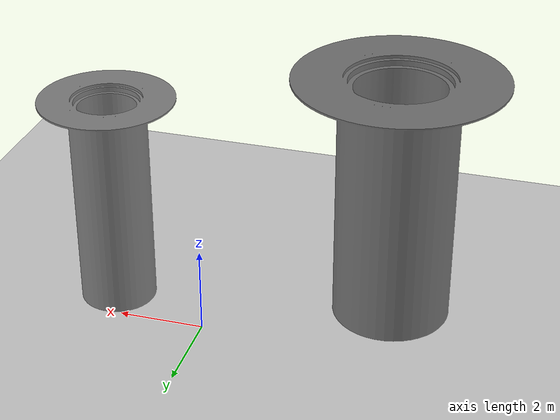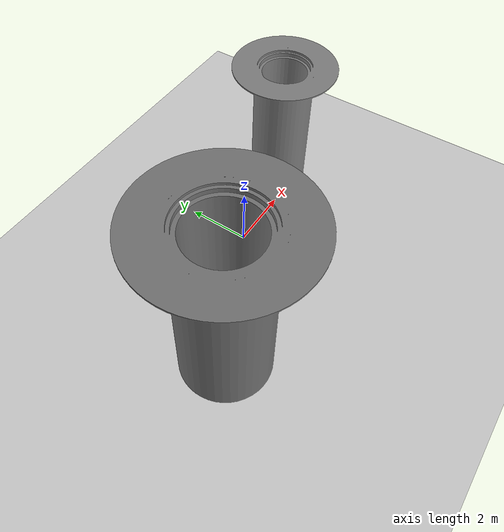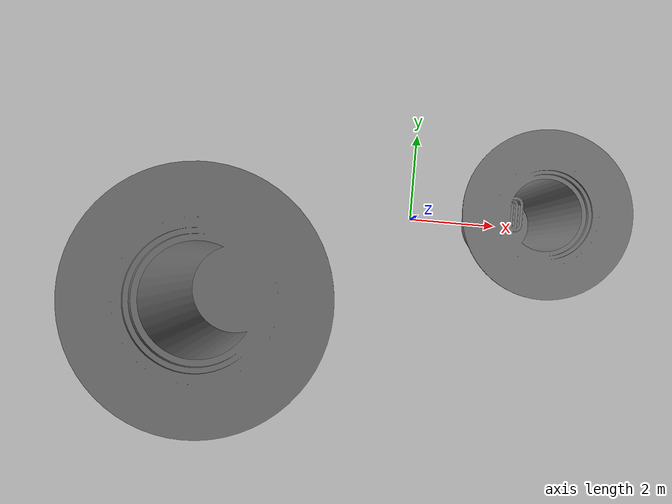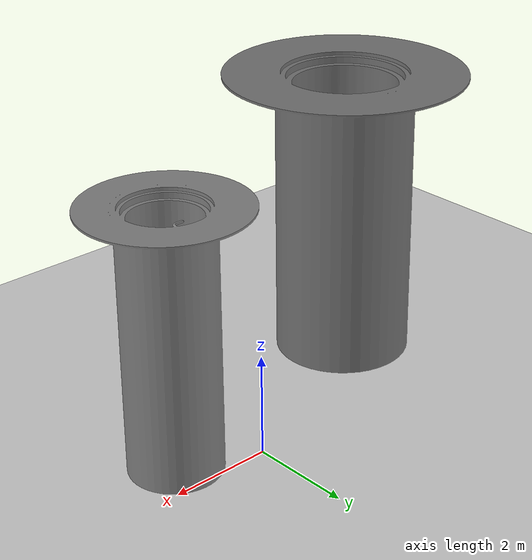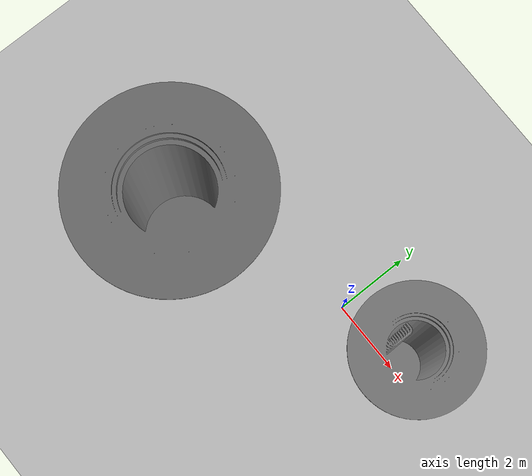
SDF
<?xml version="1.0" ?>
<sdf version="1.5">
  <world name="default">
    <!-- A global light source -->
    <include>
      <uri>model://sun</uri>
    </include>
    <!-- A ground plane -->
    <include>
      <uri>model://ground_plane</uri>
    </include>
    <physics name='default_physics' default='0' type='ode'>
      <gravity>0 0 -9.8066</gravity>
      <ode>
        <solver>
          <type>quick</type>
          <iters>10</iters>
          <sor>1.3</sor>
          <use_dynamic_moi_rescaling>0</use_dynamic_moi_rescaling>
        </solver>
        <constraints>
          <cfm>0</cfm>
          <erp>0.2</erp>
          <contact_max_correcting_vel>100</contact_max_correcting_vel>
          <contact_surface_layer>0.001</contact_surface_layer>
        </constraints>
      </ode>
      <max_step_size>0.004</max_step_size>
      <real_time_factor>1</real_time_factor>
      <real_time_update_rate>250</real_time_update_rate>
      <magnetic_field>6.0e-6 2.3e-5 -4.2e-5</magnetic_field>
    </physics>

    <include>
      <name>sewer</name>
      <pose> 2.0 0.0 5.5 0 0 1.57</pose>
      <uri>model://sewer</uri>

    </include>

    <include>
      <name>sewer_no_stairs</name>
      <pose> -4.0 -2.0 0.0 0 0 1.57</pose>
      <uri>model://sewer_no_stairs</uri>

    </include>

  </world>

</sdf>

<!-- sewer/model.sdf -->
<sdf version="1.5">
  <model name="sewer">
    <static>true</static>
    <pose>0.0 0.0 0 0 0 0</pose>
    <link name="sewer">
      <collision name="collision">
        <geometry>
          <mesh>
            <scale> 2.5 2.5 2.5 </scale>
            <uri>model://sewer/meshes/sewer_res.stl</uri>
          </mesh>
        </geometry>
      </collision>
      <visual name="visual">
        <geometry>
          <mesh>
            <scale> 2.5 2.5 2.5 </scale>
            <uri>model://sewer/meshes/sewer_res.stl</uri>
          </mesh>
        </geometry>
        <cast_shadows>false</cast_shadows>
        <material>
          <ambient>0.4 0.4 0.4 1</ambient>
          <diffuse>0.5 0.5 0.5 1</diffuse>
          <specular>0.1 0.1 0.1 1</specular>
        </material>
      </visual>
    </link>
  </model>
</sdf>

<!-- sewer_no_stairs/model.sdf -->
<sdf version="1.5">
  <model name="sewer">
    <static>true</static>
    <pose>0.0 0.0 0 0 0 0</pose>
    <link name="sewer">
      <pose>-2.4 -2.4 0 0 0 0</pose>
      <collision name="collision">
        <geometry>
          <mesh>
            <scale>0.004 0.004 0.003</scale>
            <uri>model://sewer_no_stairs/meshes/sewer_no_stairs.stl</uri>
          </mesh>
        </geometry>
      </collision>
      <visual name="visual">
        <geometry>
          <mesh>
            <scale>0.004 0.004 0.003</scale>
            <uri>model://sewer_no_stairs/meshes/sewer_no_stairs.stl</uri>
          </mesh>
        </geometry>
        <cast_shadows>false</cast_shadows>
        <material>
          <!-- Uniform flat material: no specular/highlights → reduces FAST corner detections on tube walls -->
          <ambient>0.45 0.45 0.45 1</ambient>
          <diffuse>0.45 0.45 0.45 1</diffuse>
          <specular>0.0 0.0 0.0 0</specular>
        </material>
      </visual>
    </link>
  </model>
</sdf>
